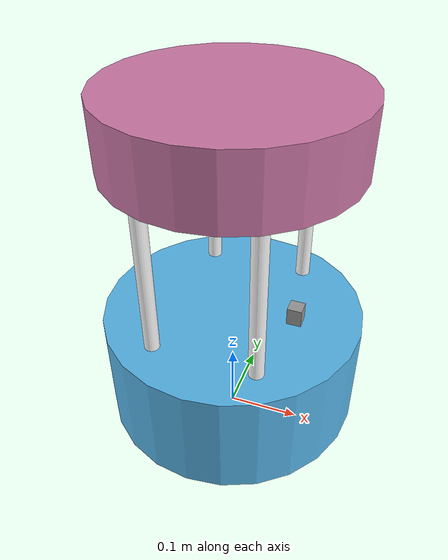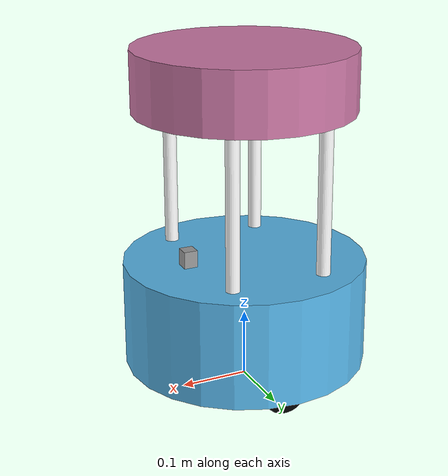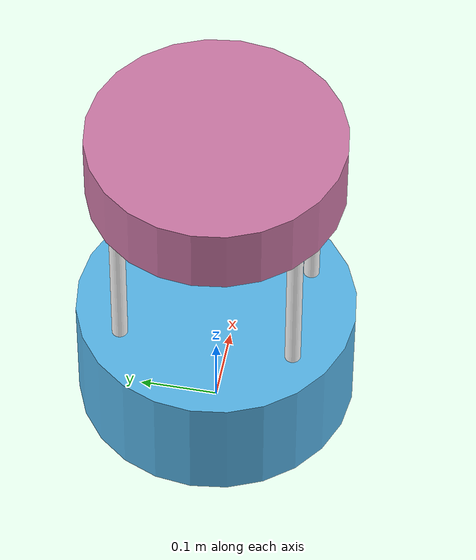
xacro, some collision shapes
<?xml version="1.0"?>
<robot xmlns:xacro="http://www.ros.org/wiki/xacro" name="barista_robot">

    <!-- Robot name -->
    <xacro:property name="robot_name" value="$(arg robot_name)"/>

    <xacro:property name="robot_color"
                    value="${'blue' if robot_name == 'morty' else 'red'}"/>

    <!-- Robot global dimensions -->
    <xacro:property name="base_link_radius" value="0.178" />
    <xacro:property name="base_link_height" value="0.155" />
    <xacro:property name="base_link_mass" value="0.5" />

    <xacro:property name="drive_wheel_radius" value="0.0352"/>
    <xacro:property name="drive_wheel_width" value="0.0206"/>
    <xacro:property name="drive_wheel_mass" value="0.05"/>

    <xacro:property name="caster_wheel_radius" value="0.0352" />
    <xacro:property name="caster_wheel_mass" value="0.05" />
    <xacro:property name="negligible_mass" value="0.001" />

    <xacro:property name="rod_radius" value="0.01" />
    <xacro:property name="rod_height" value="0.22" />
    <xacro:property name="rod_mass" value="0.025" />

    <xacro:property name="tray_radius" value="0.160" />
    <xacro:property name="tray_width" value="0.090" />
    <xacro:property name="tray_mass" value="0.25" />

    <xacro:property name="box_x_size" value="0.02" /> <!-- Laser scanner -->
    <xacro:property name="box_y_size" value="0.02" /> <!-- Laser scanner -->
    <xacro:property name="box_z_size" value="0.05" /> <!-- Laser scanner -->
    <xacro:property name="box_mass" value="0.05" />   <!-- Laser scanner -->

    <!-- Included Macros  -->
    <xacro:include filename="$(find barista_robot_description)/xacro/barista_robot_model.gazebo.xacro" />
    <xacro:include filename="$(find barista_robot_description)/xacro/barista_robot_model.gazebo_plugins.xacro" />
    <xacro:include filename="$(find barista_robot_description)/xacro/drive_wheel.xacro" />
    <xacro:include filename="$(find barista_robot_description)/xacro/caster_wheel.xacro" />
    <xacro:include filename="$(find barista_robot_description)/xacro/standoff_rod.xacro" />
    <xacro:include filename="$(find barista_robot_description)/xacro/cup_holder_tray.xacro" />
    <xacro:include filename="$(find barista_robot_description)/xacro/laser_scanner.xacro" />

    <!-- Colors -->
    <material name="blue">
        <color rgba="0.006 0.151 0.781 1"/>
    </material>

    <material name="white">
        <color rgba="1.0 1.0 1.0 1"/>
    </material>

    <material name="black">
        <color rgba="0 0 0 1"/>
    </material>

    <material name="green_dark">
        <color rgba="0.0 0.5 0.0 1"/>
    </material>

    <material name="red">
        <color rgba="1 0 0 1"/>
    </material>

    <!-- Base Footprint -->
    <link name="base_footprint"/>

    <joint name="base_footprint_to_base_link" type="fixed">
        <origin rpy="0 0 0" xyz="0 0 ${base_link_height/2 + drive_wheel_radius}" />
        <parent link="base_footprint"/>
        <child link="base_link"/>
    </joint>

    <!-- Base Link -->
    <link name="base_link">
        <visual>
            <geometry>
                <cylinder radius="${base_link_radius}" length="${base_link_height}" />
            </geometry>

            <!-- Change link color depending on robot_name -->
            <material name="${robot_color}" />

        </visual>

        <collision>
            <geometry>
                <cylinder radius="${base_link_radius}" length="${base_link_height}" />
            </geometry>
        </collision>

        <inertial>
            <mass value="${base_link_mass}" />
            <origin rpy="0 0 0" xyz="0 0 0" />
            <xacro:cylinder_inertia mass="${base_link_mass}" r="${base_link_radius}" l="${base_link_height}" />
            <!--inertia ixx="0.0049615416667" ixy="0" ixz="0" iyy="0.0049615416667" iyz="0" izz="0.007921" /-->
        </inertial>
    </link>

    <!-- Drive Wheels + Joints -->
    <xacro:drive_wheel drive_wheel_name="left_drive_wheel" origin_joint_y="0.126"/>
    <xacro:drive_wheel drive_wheel_name="right_drive_wheel" origin_joint_y="-0.126" />

    <!-- Caster Wheels + Joints-->
    <xacro:caster_wheel prefix="front" joint_origin_x="0.11" />
    <xacro:caster_wheel prefix="back" joint_origin_x="-0.11" />

    <!-- Standoff rods + Joints -->
    <xacro:standoff_rod prefix="upper_right" origin_joint_x="0.07" origin_joint_y="-0.11" />
    <xacro:standoff_rod prefix="lower_right" origin_joint_x="-0.07" origin_joint_y="-0.11" />
    <xacro:standoff_rod prefix="lower_left" origin_joint_x="-0.07" origin_joint_y="0.11" />
    <xacro:standoff_rod prefix="upper_left" origin_joint_x="0.07" origin_joint_y="0.11" />

    <!-- Cup Holder Tray + Joint -->
    <xacro:cup_holder_tray />

    <!-- Include Laser scanner or not -->
    <xacro:arg name="include_laser" default="true"/>

    <xacro:if value="$(arg include_laser)">

        <!-- Laser scanner (Model link and Frame link) -->
        <xacro:laser_scanner />

        <joint name="base_link_to_laser_scan_link_joint" type="fixed">
            <origin rpy="0 0 0" xyz="0.089 0 ${base_link_height/2}"/>
            <parent link="base_link" />
            <child link="laser_scan_link" />
        </joint>

        <joint name="laser_scan_link_to_frame_joint" type="fixed" >
            <origin rpy="0 0 0" xyz="0 0 0.05" />
            <parent link="laser_scan_link" />
            <child link="laser_scan_frame" />
        </joint>

    </xacro:if>

    <!-- Gazebo physical properties and colors -->
    <xacro:gazebo_elements />

    <!-- Gazebo plugins -->
    <xacro:gazebo_plugins />

</robot>

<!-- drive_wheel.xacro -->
<robot xmlns:xacro="http://www.ros.org/wiki/xacro">

    <xacro:include filename="$(find barista_robot_description)/xacro/inertia_macros.xacro" />

    <xacro:macro name="drive_wheel" params="drive_wheel_name origin_joint_y">
        <!-- Drive Wheel -->
        <link name="${drive_wheel_name}">
            <visual>
                <origin rpy="0 1.5707 1.5707" xyz="0 0 0" />
                <geometry>
                    <cylinder radius="${drive_wheel_radius}" length="${drive_wheel_width}" />
                </geometry>
                <material name="black" />
            </visual>

            <collision>
                <origin rpy="0 1.5707 1.5707" xyz="0 0 0" />
                <geometry>
                    <cylinder radius="${drive_wheel_radius}" length="${drive_wheel_width}" />
                </geometry>
            </collision>

            <inertial>
                <mass value="${drive_wheel_mass}" />
                <origin rpy="0 0 0" xyz="0 0 0" />
                <xacro:cylinder_inertia mass="${drive_wheel_mass}" r="${drive_wheel_radius}" l="${drive_wheel_width}" />
                <!--inertia ixx="0.0000172561667" ixy="0" ixz="0" iyy="0.0000172561667" iyz="0" izz="0.000030976" /-->
            </inertial>
        </link>

        <joint name="base_link_to_${drive_wheel_name}_joint" type="continuous">
            <origin rpy="0 0 0" xyz="0 ${origin_joint_y} ${-base_link_height/2}" />
            <parent link="base_link" />
            <child link="${drive_wheel_name}" />
            <axis xyz="0 1 0" />
        </joint>

    </xacro:macro>
</robot>

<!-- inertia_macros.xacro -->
<robot xmlns:xacro="http://www.ros.org/wiki/xacro" name="barista_robot">

    <!-- Utils -->

    <!-- "cylinder_inertia"
    # params="mass r l"
    # mass: Mass in Kilograms of the link
    # r: Radius of the cylinder in meters
    # l: height of the cylinder in meters-->
    <xacro:macro name="cylinder_inertia" params="mass r l" >
        <inertia ixx="${mass*(3*r*r+l*l)/12}" ixy = "0" ixz = "0"
                 iyy="${mass*(3*r*r+l*l)/12}" iyz = "0"
                 izz="${mass*(r*r)/2}" />
    </xacro:macro>

    <!-- sphere_inertia"
    # params="mass r"
    # mass: Mass in Kilograms of the link
    # r: Radius of the sphere in meters -->
    <xacro:macro name="sphere_inertia" params="mass r" >
        <inertia ixx="${2*mass*r*r/5}" ixy = "0" ixz = "0"
                 iyy="${2*mass*r*r/5}" iyz = "0"
                 izz="${2*mass*r*r/5}" />
    </xacro:macro>

    <!-- "box_inertia"
    # params="mass x y z"
    # mass: Mass in Kilograms of the link
    # x,y,z: Are the size of each side of the box in each of the axes in meters -->
    <xacro:macro name="box_inertia" params="mass x y z" >
        <inertia ixx="${mass*(y*y+z*z)/12}" ixy = "0" ixz = "0"
                 iyy="${mass*(x*x+z*z)/12}" iyz = "0"
                 izz="${mass*(x*x+z*z)/12}" />
    </xacro:macro>

</robot>

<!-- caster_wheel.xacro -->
<robot xmlns:xacro="http://www.ros.org/wiki/xacro">

    <xacro:include filename="$(find barista_robot_description)/xacro/inertia_macros.xacro" />

    <xacro:macro name="caster_wheel" params="prefix joint_origin_x">
        <!-- Caster wheel -->
        <link name="${prefix}_caster_wheel_roll_link" >
            <inertial>
                <mass value="${negligible_mass}" />
                <origin rpy="0 0 0" xyz="0 0 0"/>
                <xacro:sphere_inertia mass="${negligible_mass}" r="${caster_wheel_radius}" />
                <!--inertia ixx="0.000000495616" ixy="0" ixz="0" iyy="0.000000495616" iyz="0" izz="0.000000495616" /-->
            </inertial>
        </link>

        <link name="${prefix}_caster_wheel_pitch_link" >
            <inertial>
                <mass value="${negligible_mass}" />
                <origin rpy="0 0 0" xyz="0 0 0"/>
                <xacro:sphere_inertia mass="${negligible_mass}" r="${caster_wheel_radius}" />
                <!--inertia ixx="0.000000495616" ixy="0" ixz="0" iyy="0.000000495616" iyz="0" izz="0.000000495616" /-->
            </inertial>
        </link>

        <link name="${prefix}_caster_wheel_yaw_link" >
            <visual>
                <geometry>
                    <sphere radius="${caster_wheel_radius}" />
                </geometry>
                <material name="green_dark" />
            </visual>

            <collision>
                <geometry>
                    <sphere radius="${caster_wheel_radius}" />
                </geometry>
            </collision>

            <inertial>
                <mass value="${caster_wheel_mass}" />
                <origin rpy="0 0 0" xyz="0 0 0"/>
                <xacro:sphere_inertia mass="${caster_wheel_mass}" r="${caster_wheel_radius}" />
                <!--inertia ixx="0.0000247808" ixy="0" ixz="0" iyy="0.0000247808" iyz="0" izz="0.0000247808" /-->
            </inertial>
        </link>

        <joint name="${prefix}_caster_wheel_roll_joint" type="continuous" >
            <origin rpy="0 0 0" xyz="${joint_origin_x} 0 -0.0775" />
            <parent link="base_link" />
            <child link="${prefix}_caster_wheel_roll_link" />
            <axis xyz="1 0 0" />
        </joint>

        <joint name="${prefix}_caster_wheel_pitch_joint" type="continuous" >
            <origin rpy="0 0 0" xyz="0 0 0" />
            <parent link="${prefix}_caster_wheel_roll_link" />
            <child link="${prefix}_caster_wheel_pitch_link" />
            <axis xyz="0 1 0" />
        </joint>

        <joint name="${prefix}_caster_wheel_yaw_joint" type="continuous" >
            <origin rpy="0 0 0" xyz="0 0 0" />
            <parent link="${prefix}_caster_wheel_pitch_link" />
            <child link="${prefix}_caster_wheel_yaw_link" />
            <axis xyz="0 0 1" />
        </joint>
    </xacro:macro>
</robot>

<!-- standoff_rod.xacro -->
<robot xmlns:xacro="http://www.ros.org/wiki/xacro">

    <xacro:include filename="$(find barista_robot_description)/xacro/inertia_macros.xacro" />

    <xacro:macro name="standoff_rod" params="prefix origin_joint_x origin_joint_y">

        <!-- Standoff rod -->
        <link name="${prefix}_rod" >
            <visual>
                <geometry>
                    <cylinder radius="${rod_radius}" length="${rod_height}" />
                </geometry>
                <material name="white" />
            </visual>

            <collision>
                <geometry>
                    <cylinder radius="${rod_radius}" length="${rod_height}" />
                </geometry>
            </collision>

            <inertial>
                <mass value="${rod_mass}" />
                <origin rpy="0 0 0" xyz="0 0 0" />
                <xacro:cylinder_inertia mass="${rod_mass}" r="${rod_radius}" l="${rod_height}" />
                <!--inertia ixx="0.0001014583333" ixy="0" ixz="0" iyy="0.0001014583333" iyz="0" izz="0.00000125" /-->
            </inertial>
        </link>

        <joint name="base_link_to_${prefix}_rod_joint" type="fixed" >
            <origin rpy="0 0 0" xyz="${origin_joint_x} ${origin_joint_y} 0.1875" />
            <parent link="base_link" />
            <child link="${prefix}_rod" />
        </joint>

    </xacro:macro>

</robot>

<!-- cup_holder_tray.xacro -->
<robot xmlns:xacro="http://www.ros.org/wiki/xacro">

    <xacro:include filename="$(find barista_robot_description)/xacro/inertia_macros.xacro" />

    <xacro:macro name="cup_holder_tray">
        <!-- Cup Holder Tray -->
        <link name="cup_holder_tray">
            <visual>
                <geometry>
                    <cylinder radius="${tray_radius}" length="${tray_width}" />
                </geometry>

                <!-- Change link color depending on robot_name -->
                <material name="${robot_color}" />
            </visual>

            <collision>
                <geometry>
                    <cylinder radius="${tray_radius}" length="${tray_width}" />
                </geometry>
            </collision>

            <inertial>
                <mass value="${tray_mass}" />
                <origin rpy="0 0 0" xyz="0 0 0" />
                <xacro:cylinder_inertia mass="${tray_mass}" r="${tray_radius}" l="${tray_width}" />
                <!--inertia ixx="0.00176875" ixy="0" ixz="0" iyy="0.00176875" iyz="0" izz="0.0032" /-->
            </inertial>
        </link>

        <joint name="base_link_to_cup_holder_tray_joint" type="fixed">
            <origin rpy="0 0 0" xyz="0 0 0.3425" />
            <parent link="base_link" />
            <child link="cup_holder_tray" />
        </joint>
    </xacro:macro>

</robot>

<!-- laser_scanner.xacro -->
<robot xmlns:xacro="http://www.ros.org/wiki/xacro">

    <xacro:include filename="$(find barista_robot_description)/xacro/inertia_macros.xacro" />

    <xacro:macro name="laser_scanner">

        <!-- Laser Scan (Model) -->
        <link name="laser_scan_link">
            <visual>
                <geometry>
                    <mesh filename="package://barista_robot_description/meshes/hokuyo_urg_04lx.dae" />
                </geometry>
            </visual>

            <collision>
                <geometry>
                    <box size="${box_x_size} ${box_y_size} ${box_z_size}" />
                </geometry>
            </collision>

            <inertial>
                <mass value="${box_mass}" />
                <origin rpy="0 0 0" xyz="0 0 0" />
                <xacro:box_inertia mass="${box_mass}" x="${box_x_size}" y="${box_y_size}" z="${box_z_size}" />
                <!--inertia ixx="0.0000110833333" ixy="0" ixz="0" iyy="0.0000110833333" iyz="0" izz="0.0000033333333" /-->
            </inertial>
        </link>

        <!-- Laser Scan (Frame) -->
        <link name="laser_scan_frame" />

    </xacro:macro>

</robot>
